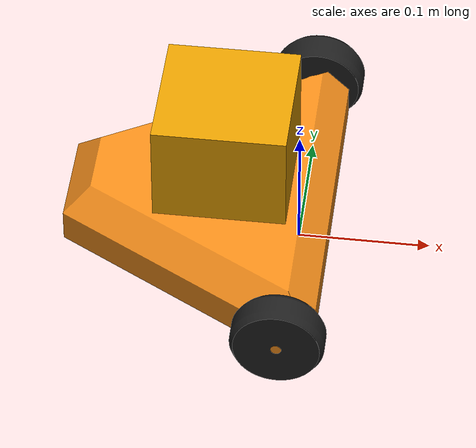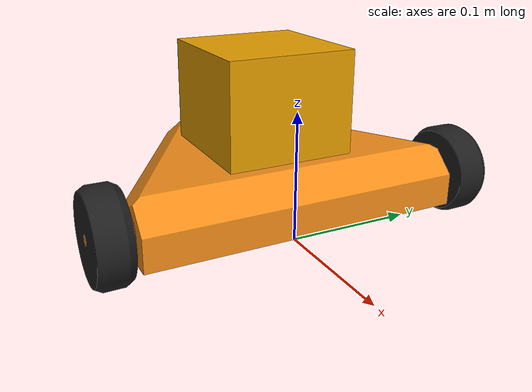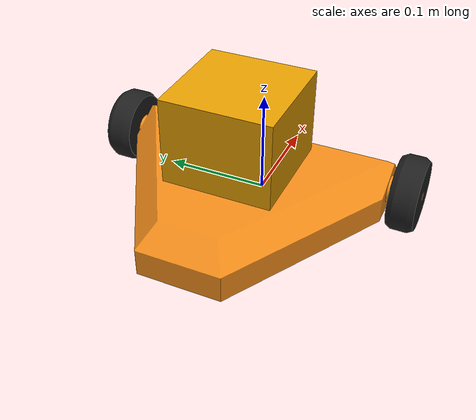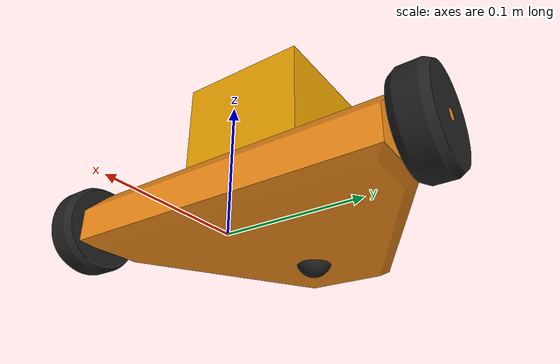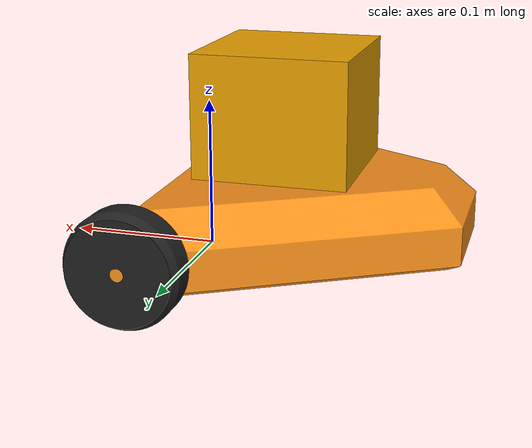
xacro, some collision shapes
<?xml version="1.0"?>
<robot name="my_ros_robot" xmlns:xacro="http://www.ros.org/wiki/xacro">

	<!-- This file is for assembly robot parts from xacro files -->
	<xacro:include filename="$(find my_ros_robot_des)/urdf/chassis_stl.xacro"/>
	<xacro:include filename="$(find my_ros_robot_des)/urdf/wheel_stl.xacro"/>
	<xacro:include filename="$(find my_ros_robot_des)/urdf/properties.xacro"/>
	<xacro:include filename="$(find my_ros_robot_des)/urdf/gazebo_prop.xacro"/>
	<xacro:include filename="$(find my_ros_robot_des)/urdf/sensor.xacro"/>

	<xacro:body/>

	<xacro:wheel
		name="left"
		translation="0 0 -0.1425"
		rotation="-3.14 0 0"
		parent="base_link"/>

	<xacro:wheel
		name="right"
		translation="0 0 0.1425"
		rotation="-3.14 0 0"
		parent="base_link"/>

</robot>

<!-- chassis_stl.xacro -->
<robot name = "myrobot" xmlns:xacro="http://www.ros.org/wiki/xacro">

	<xacro:include filename="$(find my_ros_robot_des)/urdf/properties.xacro"/>

	<xacro:macro name="body" params="">
		<link name="base_footprint"/>

		<joint name="base_footprint_to_baselink" type="fixed">
			<parent link="base_footprint"/>
			<child link="base_link"/>
			<origin rpy="1.57 0 0" xyz="0 0 0.035"/>
		</joint>

		<!-- create robot main body link -->
		<link name="base_link">

			<inertial>
				<origin rpy="0 0 0" xyz="${CHASSIS_COM}"/>
				<mass value="${CHASSIS_M}"/>
				<inertia ixx="${CHASSIS_Ixx}" iyy="${CHASSIS_Iyy}" izz="${CHASSIS_Izz}"
							ixz="${CHASSIS_Izx}" ixy="${CHASSIS_Ixy}" iyz="${CHASSIS_Iyz}"/>
			</inertial>

			<visual>
				<origin rpy="0 0 0" xyz="0 0 0"/>
				<geometry>
					<mesh filename="package://my_ros_robot_des/meshes/chassis.STL" scale="1 1 1"/>
				</geometry>
			</visual>

			<collision>
				<origin rpy="0 0 0" xyz="0 0 0"/>
				<geometry>
					<mesh filename="package://my_ros_robot_des/meshes/chassis.STL" scale="1 1 1"/>
				</geometry>
			</collision>

		</link>

		<gazebo reference="base_link">
    		<material>Gazebo/Orange</material>
  		</gazebo>

		<joint name="base_link_to_caster" type="fixed">
			<parent link="base_link"/>
			<child link="caster"/>
			<origin rpy="0 0 0" xyz="-0.11 -0.02 0"/>
		</joint>

		<!-- create robot's caster  -->
		<link name="caster">

			<inertial>
				<origin rpy="0 0 0" xyz="${CASTER_COM}"/>
				<mass value="${CASTER_M}"/>
				<inertia ixx="${CASTER_Ixx}" iyy="${CASTER_Iyy}" izz="${CASTER_Izz}"
							ixz="${CASTER_Izx}" ixy="${CASTER_Ixy}" iyz="${CASTER_Iyz}"/>
			</inertial>

			<visual>
				<origin rpy="0 0 0" xyz="0 0 0"/>
				<geometry>
					<mesh filename="package://my_ros_robot_des/meshes/caster.STL" scale="1 1 1"/>>
				</geometry>
			</visual>

			<collision>
				<origin rpy="0 0 0" xyz="0 0 0"/>
				<geometry>
					<sphere radius="0.015"/>
				</geometry>
			</collision>

		</link>

		<gazebo reference="caster">
			<mu1>0.1</mu1>
			<mu2>0.1</mu2>
			<material>Gazebo/FlatBlack</material>
		</gazebo>

	</xacro:macro>

</robot>

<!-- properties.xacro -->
<robot xmlns:xacro="http://www.ros.org/wiki/xacro">

	<xacro:property name="PI" value="3.145926535897931"/>
	<xacro:property name="WHEEL_RADIUS" value="0.07"/>

	<!-- joint properties-->
	<xacro:property name="U_MAX" value="10.0"/>
	<xacro:property name="V_MAX" value="20.0"/>
	<xacro:property name="WHEEL_JOINT_DAMP" value="0.3"/>
	<xacro:property name="WHEEL_SEPERATION" value="0.1425"/>

	<!--inertial-->
	<xacro:property name="CHASSIS_COM" value="-0.05684899 -0.00114451 0"/>
	<xacro:property name="CHASSIS_Ixx" value="0.01118174"/>
	<xacro:property name="CHASSIS_Iyy" value="0.01866085"/>
	<xacro:property name="CHASSIS_Izz" value="0.00862067"/>
	<xacro:property name="CHASSIS_Izx" value="0.0"/>
	<xacro:property name="CHASSIS_Ixy" value="0.0"/>
	<xacro:property name="CHASSIS_Iyz" value="0.0"/>
	<xacro:property name="CHASSIS_M" value="3"/>

	<xacro:property name="WHEEL_COM" value="0 0 0"/>
	<xacro:property name="WHEEL_Ixx" value="0.0010506258"/>
	<xacro:property name="WHEEL_Iyy" value="0.0010506258"/>
	<xacro:property name="WHEEL_Izz" value="0.0018029481"/>
	<xacro:property name="WHEEL_Izx" value="0.0"/>
	<xacro:property name="WHEEL_Ixy" value="0.0"/>
	<xacro:property name="WHEEL_Iyz" value="0.0"/>
	<xacro:property name="WHEEL_M" value="0.3"/>

	<xacro:property name="CASTER_COM" value="0 0 0"/>
	<xacro:property name="CASTER_Ixx" value="0.00000127"/>
	<xacro:property name="CASTER_Iyy" value="0.00000127"/>
	<xacro:property name="CASTER_Izz" value="0.00000127"/>
	<xacro:property name="CASTER_Izx" value="0.0"/>
	<xacro:property name="CASTER_Ixy" value="0.0"/>
	<xacro:property name="CASTER_Iyz" value="0.0"/>
	<xacro:property name="CASTER_M" value="0.01414"/>
</robot>

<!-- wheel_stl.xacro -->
<robot name = "wheel" xmlns:xacro="http://www.ros.org/wiki/xacro">

	<xacro:include filename="$(find my_ros_robot_des)/urdf/properties.xacro"/>

	<!-- you can include this xacro file by setting 4 paramters.  -->
	<!-- name: Name of your wheel -->
	<!-- translation: The translation in xyz frame reference to the wheel's parent link frame. -->
	<!-- rotation: The rotation in roll, pitch and yaw angle(rad) reference to the wheel's parent link frame. -->
	<!-- parent: The wheel's parent link name. -->

	<xacro:macro name="wheel" params="name translation rotation parent">

		<joint name="${name}_wheel_joint" type="continuous">
			<origin xyz="${translation}" rpy="${rotation}"/>
			<parent link="${parent}"/>
			<child link="${name}_wheel"/>
			<axis xyz="0 0 1"/>
		</joint>
		<link name="${name}_wheel">
			<inertial>
				<origin rpy="0 0 0" xyz="${WHEEL_COM}"/>
				<mass value="${WHEEL_M}"/>
				<inertia ixx="${WHEEL_Ixx}" iyy="${WHEEL_Iyy}" izz="${WHEEL_Izz}" ixz="${WHEEL_Izx}" ixy="${WHEEL_Ixy}" iyz="${WHEEL_Iyz}"/>
			</inertial>

			<visual>
				<origin rpy="0 0 0" xyz="0 0 0"/>
				<geometry>
					<mesh filename="package://my_ros_robot_des/meshes/wheel.STL" scale="1 1 1"/>
				</geometry>
			</visual>
			<collision>
				<origin rpy="0 0 0" xyz="0 0 0"/>
				<geometry>
					<cylinder length="0.025" radius="0.035"/>
				</geometry>
			</collision>
		</link>

        <gazebo reference="${name}_wheel">
            <mu1>1</mu1>
            <mu2>1</mu2>
            <kp>500000.0</kp>
            <kd>10.0</kd>
            <minDepth>0.001</minDepth>
            <maxVel>0.1</maxVel>
            <fdir1>1 0 0</fdir1>
            <material>Gazebo/FlatBlack</material>
	    </gazebo>

	</xacro:macro>
</robot>

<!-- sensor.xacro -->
<robot name = "myrobot" xmlns:xacro="http://www.ros.org/wiki/xacro">

    <!-- Hokuyo Laser -->
    <joint name="hokuyo_joint" type="fixed">
        <axis xyz="0 0 1" />
        <origin xyz="-0.055 0.055 0 " rpy="-1.57 0 0"/>
        <parent link="base_link"/>
        <child link="hokuyo_link"/>
    </joint>

    <link name="hokuyo_link">
    <collision>
        <origin xyz="0 0 0" rpy="0 0 0"/>
        <geometry>
    <box size="0.1 0.1 0.1"/>
        </geometry>
    </collision>

    <visual>
        <origin xyz="0 0 0" rpy="0 0 0"/>
        <geometry>
        <mesh filename="package://my_ros_robot_des/meshes/hokuyo.dae"/>
        </geometry>
    </visual>

    <inertial>
        <mass value="1e-5" />
        <origin xyz="0 0 0" rpy="0 0 0"/>
        <inertia ixx="1e-6" ixy="0" ixz="0" iyy="1e-6" iyz="0" izz="1e-6" />
    </inertial>
    </link>

    <!-- camera -->
    <joint name="base_link_to_camera" type="fixed">
			<parent link="base_link"/>
			<child link="camera_link"/>
			<origin rpy="-1.57 0 0" xyz="0.02 0 0"/>
	</joint>

	<link name="camera_link"/>
</robot>
